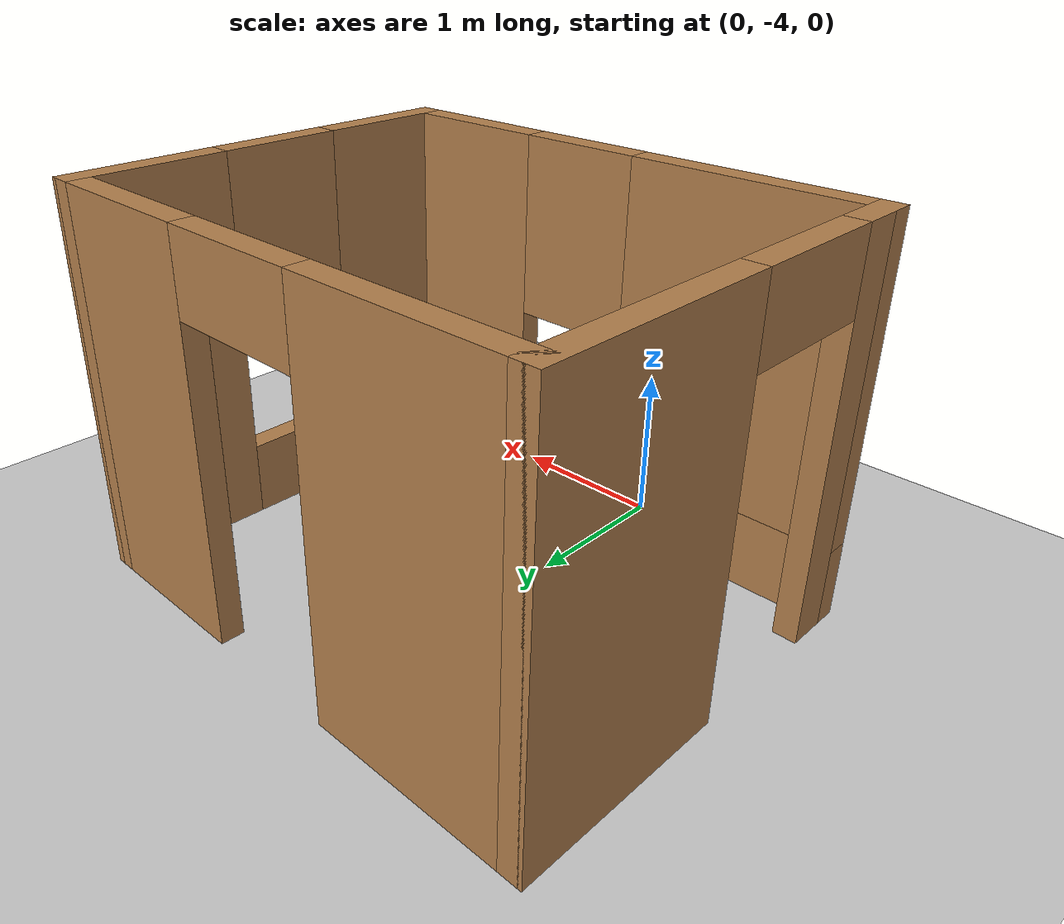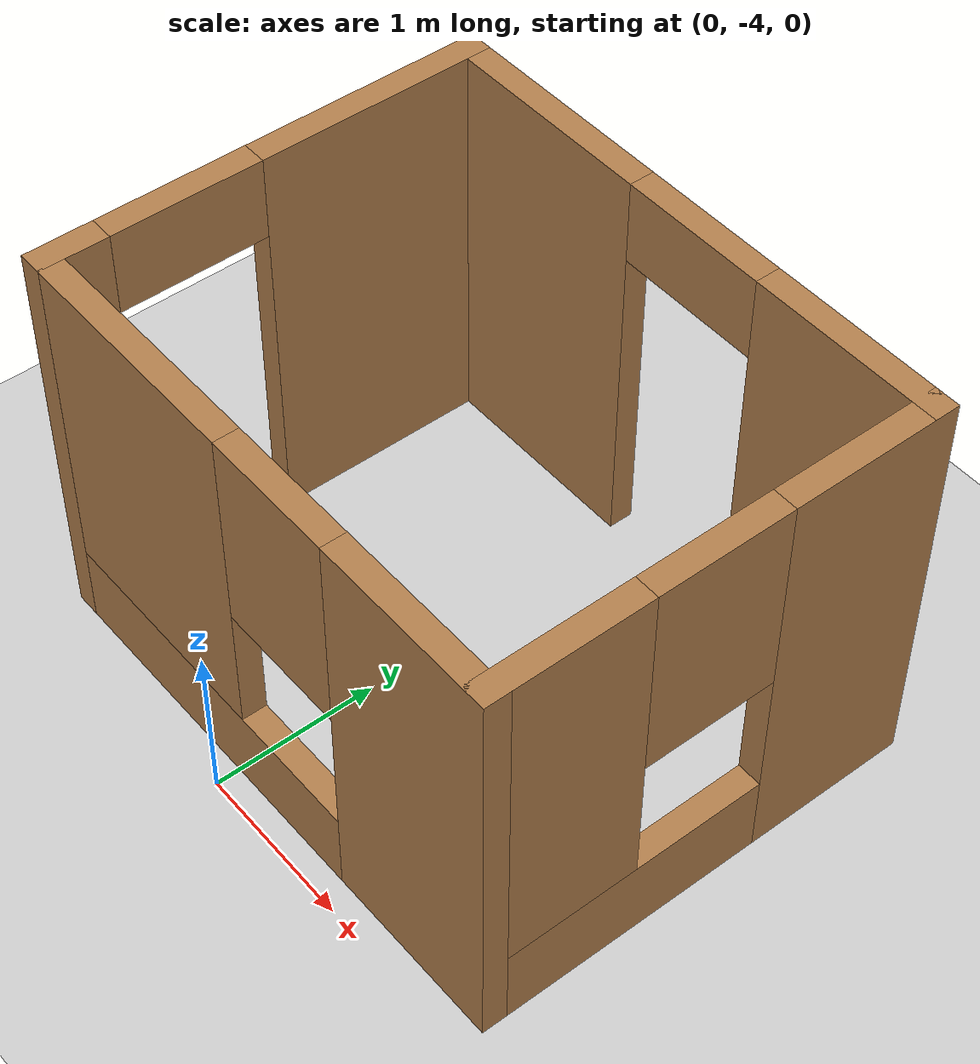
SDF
<sdf version="1.7">
 <world name="my_world">
  <light name="sun" type="directional">
   <pose>0 0 10 0 -0 0</pose>
   <diffuse>0.8 0.8 0.8 1</diffuse>
   <specular>0.2 0.2 0.2 1</specular>
   <attenuation>
    <range>1000</range>
    <constant>0.9</constant>
    <linear>0.01</linear>
    <quadratic>0.001</quadratic>
   </attenuation>
   <direction>-0.5 0.1 -0.9</direction>
   <spot><inner_angle>0</inner_angle><outer_angle>0</outer_angle><falloff>0</falloff></spot>
  </light>
  <model name="ground_plane">
   <static>1</static>
   <link name="link">
    <collision name="collision">
     <geometry><plane><normal>0 0 1</normal><size>100 100</size></plane></geometry>
     <surface><friction><ode><mu>100</mu><mu2>50</mu2></ode></friction></surface>
    </collision>
    <visual name="visual">
     <cast_shadows>0</cast_shadows>
     <geometry><plane><normal>0 0 1</normal><size>100 100</size></plane></geometry>
     <material>
      <script><uri>file://media/materials/scripts/gazebo.material</uri><name>Gazebo/Grey</name></script>
     </material>
    </visual>
   </link>
  </model>
  <gravity>0 0 -9.8</gravity>
  <magnetic_field>6e-06 2.3e-05 -4.2e-05</magnetic_field>
  <atmosphere type="adiabatic"/>
  <physics type="ode">
   <max_step_size>0.001</max_step_size>
   <real_time_factor>1</real_time_factor>
   <real_time_update_rate>1000</real_time_update_rate>
  </physics>
  <scene><ambient>0.4 0.4 0.4 1</ambient><background>0.7 0.7 0.7 1</background><shadows>1</shadows></scene>
  <audio><device>default</device></audio>
  <spherical_coordinates>
   <surface_model>EARTH_WGS84</surface_model>
   <latitude_deg>0</latitude_deg>
   <longitude_deg>0</longitude_deg>
   <elevation>0</elevation>
   <heading_deg>0</heading_deg>
  </spherical_coordinates>
  <model name="my_world">
   <pose>0.245 -1.9275 0 0 -0 0</pose>
   <link name="Wall_0">
    <pose>0 0.7475 0 0 -0 0</pose>
    <visual name="Wall_0_Visual_0">
     <pose>-1.0375 0 1.25 0 -0 0</pose>
     <geometry><box><size>1.425 0.15 2.5</size></box></geometry>
     <material>
      <script><uri>file://media/materials/scripts/gazebo.material</uri><name>Gazebo/Wood</name></script>
      <ambient>1 1 1 1</ambient>
     </material>
     <meta><layer>0</layer></meta>
    </visual>
    <collision name="Wall_0_Collision_0">
     <geometry><box><size>1.425 0.15 2.5</size></box></geometry>
     <pose>-1.0375 0 1.25 0 -0 0</pose>
    </collision>
    <visual name="Wall_0_Visual_1">
     <pose>1.1625 0 1.25 0 -0 0</pose>
     <geometry><box><size>1.175 0.15 2.5</size></box></geometry>
     <material>
      <script><uri>file://media/materials/scripts/gazebo.material</uri><name>Gazebo/Wood</name></script>
      <ambient>1 1 1 1</ambient>
     </material>
     <meta><layer>0</layer></meta>
    </visual>
    <collision name="Wall_0_Collision_1">
     <geometry><box><size>1.175 0.15 2.5</size></box></geometry>
     <pose>1.1625 0 1.25 0 -0 0</pose>
    </collision>
    <visual name="Wall_0_Visual_2">
     <pose>0.125 0 2.25 0 -0 0</pose>
     <geometry><box><size>0.9 0.15 0.5</size></box></geometry>
     <material>
      <script><uri>file://media/materials/scripts/gazebo.material</uri><name>Gazebo/Wood</name></script>
      <ambient>1 1 1 1</ambient>
     </material>
     <meta><layer>0</layer></meta>
    </visual>
    <collision name="Wall_0_Collision_2">
     <geometry><box><size>0.9 0.15 0.5</size></box></geometry>
     <pose>0.125 0 2.25 0 -0 0</pose>
    </collision>
   </link>
   <link name="Wall_1">
    <pose>1.675 -0.5525 0 0 -0 -1.5708</pose>
    <visual name="Wall_1_Visual_0">
     <pose>-0.8725 0 1.25 0 -0 0</pose>
     <geometry><box><size>1.005 0.15 2.5</size></box></geometry>
     <material>
      <script><uri>file://media/materials/scripts/gazebo.material</uri><name>Gazebo/Wood</name></script>
      <ambient>1 1 1 1</ambient>
     </material>
     <meta><layer>0</layer></meta>
    </visual>
    <collision name="Wall_1_Collision_0">
     <geometry><box><size>1.005 0.15 2.5</size></box></geometry>
     <pose>-0.8725 0 1.25 0 -0 0</pose>
    </collision>
    <visual name="Wall_1_Visual_1">
     <pose>0.5025 0 0.25 0 -0 0</pose>
     <geometry><box><size>1.745 0.15 0.5</size></box></geometry>
     <material>
      <script><uri>file://media/materials/scripts/gazebo.material</uri><name>Gazebo/Wood</name></script>
      <ambient>1 1 1 1</ambient>
     </material>
     <meta><layer>0</layer></meta>
    </visual>
    <collision name="Wall_1_Collision_1">
     <geometry><box><size>1.745 0.15 0.5</size></box></geometry>
     <pose>0.5025 0 0.25 0 -0 0</pose>
    </collision>
    <visual name="Wall_1_Visual_2">
     <pose>0.9025 0 1.5 0 -0 0</pose>
     <geometry><box><size>0.945 0.15 2</size></box></geometry>
     <material>
      <script><uri>file://media/materials/scripts/gazebo.material</uri><name>Gazebo/Wood</name></script>
      <ambient>1 1 1 1</ambient>
     </material>
     <meta><layer>0</layer></meta>
    </visual>
    <collision name="Wall_1_Collision_2">
     <geometry><box><size>0.945 0.15 2</size></box></geometry>
     <pose>0.9025 0 1.5 0 -0 0</pose>
    </collision>
    <visual name="Wall_1_Visual_3">
     <pose>0.03 0 1.9 0 -0 0</pose>
     <geometry><box><size>0.8 0.15 1.2</size></box></geometry>
     <material>
      <script><uri>file://media/materials/scripts/gazebo.material</uri><name>Gazebo/Wood</name></script>
      <ambient>1 1 1 1</ambient>
     </material>
     <meta><layer>0</layer></meta>
    </visual>
    <collision name="Wall_1_Collision_3">
     <geometry><box><size>0.8 0.15 1.2</size></box></geometry>
     <pose>0.03 0 1.9 0 -0 0</pose>
    </collision>
   </link>
   <link name="Wall_2">
    <pose>0 -1.8525 0 0 -0 3.14159</pose>
    <visual name="Wall_2_Visual_0">
     <pose>-1.1925 0 1.25 0 -0 0</pose>
     <geometry><box><size>1.115 0.15 2.5</size></box></geometry>
     <material>
      <script><uri>file://media/materials/scripts/gazebo.material</uri><name>Gazebo/Wood</name></script>
      <ambient>1 1 1 1</ambient>
     </material>
     <meta><layer>0</layer></meta>
    </visual>
    <collision name="Wall_2_Collision_0">
     <geometry><box><size>1.115 0.15 2.5</size></box></geometry>
     <pose>-1.1925 0 1.25 0 -0 0</pose>
    </collision>
    <visual name="Wall_2_Visual_1">
     <pose>0.5575 0 0.25 0 -0 0</pose>
     <geometry><box><size>2.385 0.15 0.5</size></box></geometry>
     <material>
      <script><uri>file://media/materials/scripts/gazebo.material</uri><name>Gazebo/Wood</name></script>
      <ambient>1 1 1 1</ambient>
     </material>
     <meta><layer>0</layer></meta>
    </visual>
    <collision name="Wall_2_Collision_1">
     <geometry><box><size>2.385 0.15 0.5</size></box></geometry>
     <pose>0.5575 0 0.25 0 -0 0</pose>
    </collision>
    <visual name="Wall_2_Visual_2">
     <pose>0.9575 0 1.5 0 -0 0</pose>
     <geometry><box><size>1.585 0.15 2</size></box></geometry>
     <material>
      <script><uri>file://media/materials/scripts/gazebo.material</uri><name>Gazebo/Wood</name></script>
      <ambient>1 1 1 1</ambient>
     </material>
     <meta><layer>0</layer></meta>
    </visual>
    <collision name="Wall_2_Collision_2">
     <geometry><box><size>1.585 0.15 2</size></box></geometry>
     <pose>0.9575 0 1.5 0 -0 0</pose>
    </collision>
    <visual name="Wall_2_Visual_3">
     <pose>-0.235 0 1.9 0 -0 0</pose>
     <geometry><box><size>0.8 0.15 1.2</size></box></geometry>
     <material>
      <script><uri>file://media/materials/scripts/gazebo.material</uri><name>Gazebo/Wood</name></script>
      <ambient>1 1 1 1</ambient>
     </material>
     <meta><layer>0</layer></meta>
    </visual>
    <collision name="Wall_2_Collision_3">
     <geometry><box><size>0.8 0.15 1.2</size></box></geometry>
     <pose>-0.235 0 1.9 0 -0 0</pose>
    </collision>
   </link>
   <link name="Wall_3">
    <pose>-1.675 -0.5525 0 0 -0 1.5708</pose>
    <visual name="Wall_3_Visual_0">
     <pose>-1.1725 0 1.25 0 -0 0</pose>
     <geometry><box><size>0.405 0.15 2.5</size></box></geometry>
     <material>
      <script><uri>file://media/materials/scripts/gazebo.material</uri><name>Gazebo/Wood</name></script>
      <ambient>1 1 1 1</ambient>
     </material>
     <meta><layer>0</layer></meta>
    </visual>
    <collision name="Wall_3_Collision_0">
     <geometry><box><size>0.405 0.15 2.5</size></box></geometry>
     <pose>-1.1725 0 1.25 0 -0 0</pose>
    </collision>
    <visual name="Wall_3_Visual_1">
     <pose>0.6525 0 1.25 0 -0 0</pose>
     <geometry><box><size>1.445 0.15 2.5</size></box></geometry>
     <material>
      <script><uri>file://media/materials/scripts/gazebo.material</uri><name>Gazebo/Wood</name></script>
      <ambient>1 1 1 1</ambient>
     </material>
     <meta><layer>0</layer></meta>
    </visual>
    <collision name="Wall_3_Collision_1">
     <geometry><box><size>1.445 0.15 2.5</size></box></geometry>
     <pose>0.6525 0 1.25 0 -0 0</pose>
    </collision>
    <visual name="Wall_3_Visual_2">
     <pose>-0.52 0 2.25 0 -0 0</pose>
     <geometry><box><size>0.9 0.15 0.5</size></box></geometry>
     <material>
      <script><uri>file://media/materials/scripts/gazebo.material</uri><name>Gazebo/Wood</name></script>
      <ambient>1 1 1 1</ambient>
     </material>
     <meta><layer>0</layer></meta>
    </visual>
    <collision name="Wall_3_Collision_2">
     <geometry><box><size>0.9 0.15 0.5</size></box></geometry>
     <pose>-0.52 0 2.25 0 -0 0</pose>
    </collision>
   </link>
   <static>1</static>
  </model>
 </world>
</sdf>
